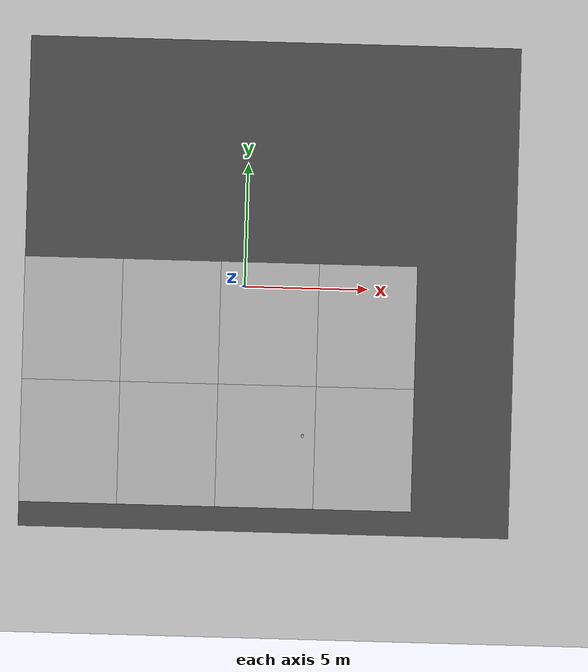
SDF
<sdf version="1.4">
 <world name="default">
  <light name="sun" type="directional">
   <pose>0 0 10 0 -0 0</pose>
   <diffuse>0.8 0.8 0.8 1</diffuse>
   <specular>0.2 0.2 0.2 1</specular>
   <attenuation>
    <range>1000</range>
    <constant>0.9</constant>
    <linear>0.01</linear>
    <quadratic>0.001</quadratic>
   </attenuation>
   <direction>-0.5 0.1 -0.9</direction>
  </light>
  <model name="ground_plane">
   <static>1</static>
   <link name="link">
    <collision name="collision">
     <geometry><plane><normal>0 0 1</normal><size>100 100</size></plane></geometry>
     <surface><friction><ode><mu>100</mu><mu2>50</mu2></ode></friction></surface>
    </collision>
    <visual name="visual">
     <cast_shadows>0</cast_shadows>
     <geometry><plane><normal>0 0 1</normal><size>100 100</size></plane></geometry>
     <material>
      <script><uri>file://media/materials/scripts/gazebo.material</uri><name>Gazebo/Grey</name></script>
     </material>
    </visual>
    <velocity_decay><linear>0</linear><angular>0</angular></velocity_decay>
   </link>
  </model>
  <physics type="ode">
   <max_step_size>0.001</max_step_size>
   <real_time_factor>1</real_time_factor>
   <real_time_update_rate>1000</real_time_update_rate>
   <gravity>0 0 -9.8</gravity>
  </physics>
  <scene><ambient>0.4 0.4 0.4 1</ambient><background>0.7 0.7 0.7 1</background><shadows>1</shadows></scene>
  <spherical_coordinates>
   <surface_model>EARTH_WGS84</surface_model>
   <latitude_deg>0</latitude_deg>
   <longitude_deg>0</longitude_deg>
   <elevation>0</elevation>
   <heading_deg>0</heading_deg>
  </spherical_coordinates>
  <model name="mud_box">
   <static>1</static>
   <link name="link">
    <collision name="collision"><geometry><box><size>8 10 0.2</size></box></geometry></collision>
    <visual name="visual_1">
     <pose>-2 2.5 0 0 -0 0</pose>
     <cast_shadows>0</cast_shadows>
     <geometry><box><size>4 5 0.2</size></box></geometry>
     <material>
      <script>
       <uri>model://mud_box/materials/scripts</uri>
       <uri>model://mud_box/materials/textures</uri>
       <name>vrc/mud</name>
      </script>
     </material>
    </visual>
    <visual name="visual_2">
     <pose>2 2.5 0 0 -0 0</pose>
     <cast_shadows>0</cast_shadows>
     <geometry><box><size>4 5 0.2</size></box></geometry>
     <material>
      <script>
       <uri>model://mud_box/materials/scripts</uri>
       <uri>model://mud_box/materials/textures</uri>
       <name>vrc/mud</name>
      </script>
     </material>
    </visual>
    <visual name="visual_3">
     <pose>2 -2.5 0 0 -0 0</pose>
     <cast_shadows>0</cast_shadows>
     <geometry><box><size>4 5 0.2</size></box></geometry>
     <material>
      <script>
       <uri>model://mud_box/materials/scripts</uri>
       <uri>model://mud_box/materials/textures</uri>
       <name>vrc/mud</name>
      </script>
     </material>
    </visual>
    <visual name="visual_4">
     <pose>-2 -2.5 0 0 -0 0</pose>
     <cast_shadows>0</cast_shadows>
     <geometry><box><size>4 5 0.2</size></box></geometry>
     <material>
      <script>
       <uri>model://mud_box/materials/scripts</uri>
       <uri>model://mud_box/materials/textures</uri>
       <name>vrc/mud</name>
      </script>
     </material>
    </visual>
    <velocity_decay><linear>0</linear><angular>0</angular></velocity_decay>
   </link>
   <pose>-5 -4 0 0 -0 0</pose>
  </model>
  <model name="mud_box_0">
   <static>1</static>
   <link name="link">
    <collision name="collision"><geometry><box><size>8 10 0.2</size></box></geometry></collision>
    <visual name="visual_1">
     <pose>-2 2.5 0 0 -0 0</pose>
     <cast_shadows>0</cast_shadows>
     <geometry><box><size>4 5 0.2</size></box></geometry>
     <material>
      <script>
       <uri>model://mud_box/materials/scripts</uri>
       <uri>model://mud_box/materials/textures</uri>
       <name>vrc/mud</name>
      </script>
     </material>
    </visual>
    <visual name="visual_2">
     <pose>2 2.5 0 0 -0 0</pose>
     <cast_shadows>0</cast_shadows>
     <geometry><box><size>4 5 0.2</size></box></geometry>
     <material>
      <script>
       <uri>model://mud_box/materials/scripts</uri>
       <uri>model://mud_box/materials/textures</uri>
       <name>vrc/mud</name>
      </script>
     </material>
    </visual>
    <visual name="visual_3">
     <pose>2 -2.5 0 0 -0 0</pose>
     <cast_shadows>0</cast_shadows>
     <geometry><box><size>4 5 0.2</size></box></geometry>
     <material>
      <script>
       <uri>model://mud_box/materials/scripts</uri>
       <uri>model://mud_box/materials/textures</uri>
       <name>vrc/mud</name>
      </script>
     </material>
    </visual>
    <visual name="visual_4">
     <pose>-2 -2.5 0 0 -0 0</pose>
     <cast_shadows>0</cast_shadows>
     <geometry><box><size>4 5 0.2</size></box></geometry>
     <material>
      <script>
       <uri>model://mud_box/materials/scripts</uri>
       <uri>model://mud_box/materials/textures</uri>
       <name>vrc/mud</name>
      </script>
     </material>
    </visual>
    <velocity_decay><linear>0</linear><angular>0</angular></velocity_decay>
   </link>
   <pose>3 -4 0 0 -0 0</pose>
  </model>
  <model name="asphalt_plane">
   <static>1</static>
   <link name="link">
    <collision name="collision"><geometry><box><size>20 20 0.1</size></box></geometry></collision>
    <visual name="visual">
     <cast_shadows>0</cast_shadows>
     <geometry><box><size>20 20 0.1</size></box></geometry>
     <material>
      <script>
       <uri>model://asphalt_plane/materials/scripts</uri>
       <uri>model://asphalt_plane/materials/textures</uri>
       <name>vrc/asphalt</name>
      </script>
     </material>
    </visual>
    <velocity_decay><linear>0</linear><angular>0</angular></velocity_decay>
   </link>
   <pose>1 0 0 0 -0 0</pose>
  </model>
  <model name="beer">
   <link name="link">
    <pose>0 0 0.115 0 -0 0</pose>
    <inertial>
     <mass>0.39</mass>
     <inertia><ixx>0.00058</ixx><ixy>0</ixy><ixz>0</ixz><iyy>0.00058</iyy><iyz>0</iyz><izz>0.00019</izz></inertia>
    </inertial>
    <collision name="collision">
     <geometry><cylinder><radius>0.055</radius><length>0.23</length></cylinder></geometry>
    </collision>
    <visual name="visual">
     <geometry><cylinder><radius>0.055</radius><length>0.23</length></cylinder></geometry>
     <material>
      <script>
       <uri>model://beer/materials/scripts</uri>
       <uri>model://beer/materials/textures</uri>
       <name>Beer/Diffuse</name>
      </script>
     </material>
    </visual>
    <velocity_decay><linear>0</linear><angular>0</angular></velocity_decay>
   </link>
   <pose>2.49518 -5.99998 0.099995 2.3e-05 8.9e-05 -9.8e-05</pose>
   <static>0</static>
  </model>
 </world>
</sdf>
